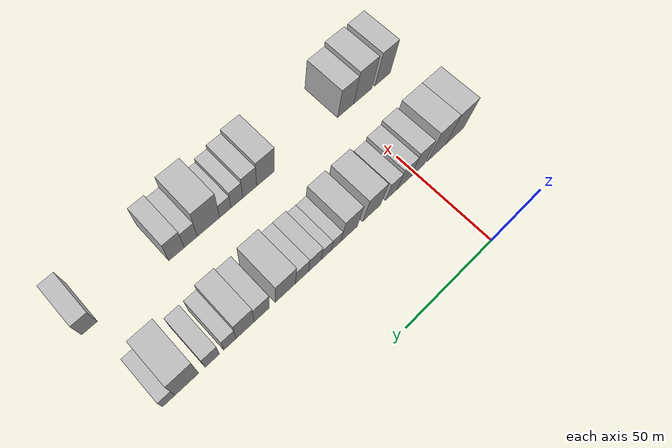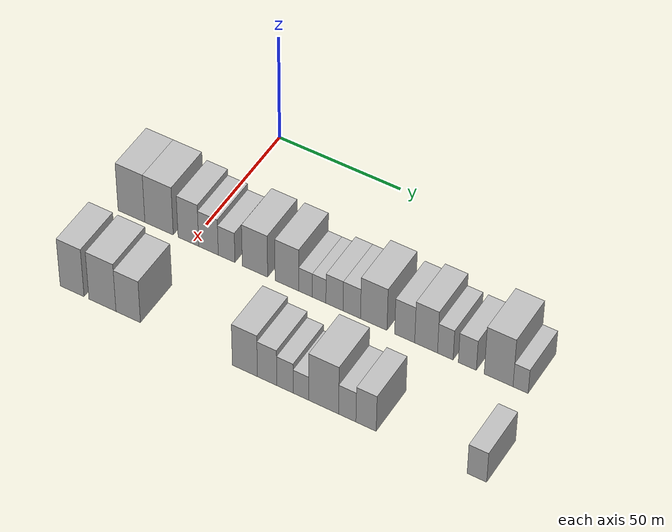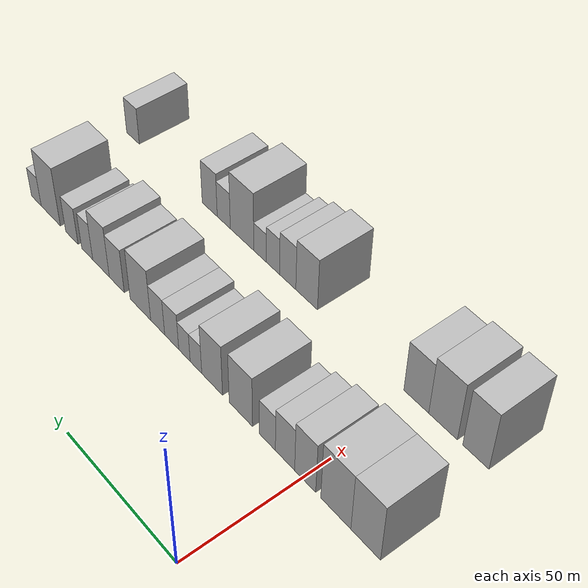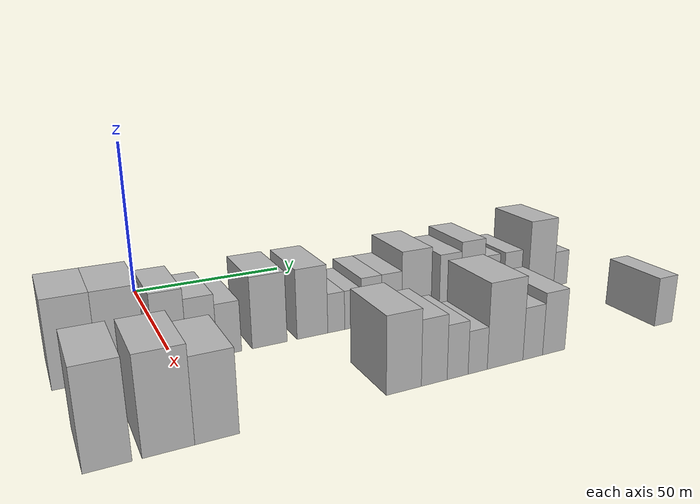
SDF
<sdf version="1.6">
 <world name="default">
  <model name="building_26">
   <static>1</static>
   <pose>50.0000 -24.9672 0 0.000000 0.000000 0.000000</pose>
   <link name="link">
    <pose>0 0 12.00 0 0 0</pose>
    <collision name="collision"><geometry><box><size>20.0000 11.2231 24.0000</size></box></geometry></collision>
    <visual name="visual">
     <cast_shadows>0</cast_shadows>
     <geometry><box><size>20.0000 11.2231 24.0000</size></box></geometry>
     <material>
      <script>
       <uri>model://HANNAS_wall/materials/scripts</uri>
       <uri>model://HANNAS_wall/materials/textures</uri>
       <name>vrc/HANNAS_wall</name>
      </script>
     </material>
    </visual>
   </link>
  </model>
  <model name="building_27">
   <static>1</static>
   <pose>50.0000 -13.4424 0 0.000000 0.000000 0.000000</pose>
   <link name="link">
    <pose>0 0 12.00 0 0 0</pose>
    <collision name="collision"><geometry><box><size>20.0000 11.8265 24.0000</size></box></geometry></collision>
    <visual name="visual">
     <cast_shadows>0</cast_shadows>
     <geometry><box><size>20.0000 11.8265 24.0000</size></box></geometry>
     <material>
      <script>
       <uri>model://HANNAS_wall/materials/scripts</uri>
       <uri>model://HANNAS_wall/materials/textures</uri>
       <name>vrc/HANNAS_wall</name>
      </script>
     </material>
    </visual>
   </link>
  </model>
  <model name="building_28">
   <static>1</static>
   <pose>50.0000 -1.2540 0 0.000000 0.000000 0.000000</pose>
   <link name="link">
    <pose>0 0 10.50 0 0 0</pose>
    <collision name="collision"><geometry><box><size>20.0000 8.5501 21.0000</size></box></geometry></collision>
    <visual name="visual">
     <cast_shadows>0</cast_shadows>
     <geometry><box><size>20.0000 8.5501 21.0000</size></box></geometry>
     <material>
      <script>
       <uri>model://HANNAS_wall/materials/scripts</uri>
       <uri>model://HANNAS_wall/materials/textures</uri>
       <name>vrc/HANNAS_wall</name>
      </script>
     </material>
    </visual>
   </link>
  </model>
  <model name="building_29">
   <static>1</static>
   <pose>50.0000 7.0445 0 0.000000 0.000000 0.000000</pose>
   <link name="link">
    <pose>0 0 9.00 0 0 0</pose>
    <collision name="collision"><geometry><box><size>20.0000 8.0470 18.0000</size></box></geometry></collision>
    <visual name="visual">
     <cast_shadows>0</cast_shadows>
     <geometry><box><size>20.0000 8.0470 18.0000</size></box></geometry>
     <material>
      <script>
       <uri>model://HANNAS_wall/materials/scripts</uri>
       <uri>model://HANNAS_wall/materials/textures</uri>
       <name>vrc/HANNAS_wall</name>
      </script>
     </material>
    </visual>
   </link>
  </model>
  <model name="building_30">
   <static>1</static>
   <pose>50.0000 14.4716 0 0.000000 0.000000 0.000000</pose>
   <link name="link">
    <pose>0 0 7.50 0 0 0</pose>
    <collision name="collision"><geometry><box><size>20.0000 6.8073 15.0000</size></box></geometry></collision>
    <visual name="visual">
     <cast_shadows>0</cast_shadows>
     <geometry><box><size>20.0000 6.8073 15.0000</size></box></geometry>
     <material>
      <script>
       <uri>model://HANNAS_wall/materials/scripts</uri>
       <uri>model://HANNAS_wall/materials/textures</uri>
       <name>vrc/HANNAS_wall</name>
      </script>
     </material>
    </visual>
   </link>
  </model>
  <model name="building_31">
   <static>1</static>
   <pose>50.0000 26.0191 0 0.000000 0.000000 0.000000</pose>
   <link name="link">
    <pose>0 0 10.50 0 0 0</pose>
    <collision name="collision"><geometry><box><size>20.0000 10.2875 21.0000</size></box></geometry></collision>
    <visual name="visual">
     <cast_shadows>0</cast_shadows>
     <geometry><box><size>20.0000 10.2875 21.0000</size></box></geometry>
     <material>
      <script>
       <uri>model://HANNAS_wall/materials/scripts</uri>
       <uri>model://HANNAS_wall/materials/textures</uri>
       <name>vrc/HANNAS_wall</name>
      </script>
     </material>
    </visual>
   </link>
  </model>
  <model name="building_32">
   <static>1</static>
   <pose>50.0000 38.9282 0 0.000000 0.000000 0.000000</pose>
   <link name="link">
    <pose>0 0 10.50 0 0 0</pose>
    <collision name="collision"><geometry><box><size>20.0000 9.5307 21.0000</size></box></geometry></collision>
    <visual name="visual">
     <cast_shadows>0</cast_shadows>
     <geometry><box><size>20.0000 9.5307 21.0000</size></box></geometry>
     <material>
      <script>
       <uri>model://HANNAS_wall/materials/scripts</uri>
       <uri>model://HANNAS_wall/materials/textures</uri>
       <name>vrc/HANNAS_wall</name>
      </script>
     </material>
    </visual>
   </link>
  </model>
  <model name="building_33">
   <static>1</static>
   <pose>50.0000 46.4095 0 0.000000 0.000000 0.000000</pose>
   <link name="link">
    <pose>0 0 6.00 0 0 0</pose>
    <collision name="collision"><geometry><box><size>20.0000 5.4320 12.0000</size></box></geometry></collision>
    <visual name="visual">
     <cast_shadows>0</cast_shadows>
     <geometry><box><size>20.0000 5.4320 12.0000</size></box></geometry>
     <material>
      <script>
       <uri>model://HANNAS_wall/materials/scripts</uri>
       <uri>model://HANNAS_wall/materials/textures</uri>
       <name>vrc/HANNAS_wall</name>
      </script>
     </material>
    </visual>
   </link>
  </model>
  <model name="building_34">
   <static>1</static>
   <pose>50.0000 51.8343 0 0.000000 0.000000 0.000000</pose>
   <link name="link">
    <pose>0 0 6.00 0 0 0</pose>
    <collision name="collision"><geometry><box><size>20.0000 5.4175 12.0000</size></box></geometry></collision>
    <visual name="visual">
     <cast_shadows>0</cast_shadows>
     <geometry><box><size>20.0000 5.4175 12.0000</size></box></geometry>
     <material>
      <script>
       <uri>model://HANNAS_wall/materials/scripts</uri>
       <uri>model://HANNAS_wall/materials/textures</uri>
       <name>vrc/HANNAS_wall</name>
      </script>
     </material>
    </visual>
   </link>
  </model>
  <model name="building_35">
   <static>1</static>
   <pose>50.0000 57.9451 0 0.000000 0.000000 0.000000</pose>
   <link name="link">
    <pose>0 0 7.50 0 0 0</pose>
    <collision name="collision"><geometry><box><size>20.0000 6.8042 15.0000</size></box></geometry></collision>
    <visual name="visual">
     <cast_shadows>0</cast_shadows>
     <geometry><box><size>20.0000 6.8042 15.0000</size></box></geometry>
     <material>
      <script>
       <uri>model://HANNAS_wall/materials/scripts</uri>
       <uri>model://HANNAS_wall/materials/textures</uri>
       <name>vrc/HANNAS_wall</name>
      </script>
     </material>
    </visual>
   </link>
  </model>
  <model name="building_36">
   <static>1</static>
   <pose>50.0000 64.7987 0 0.000000 0.000000 0.000000</pose>
   <link name="link">
    <pose>0 0 7.50 0 0 0</pose>
    <collision name="collision"><geometry><box><size>20.0000 6.9030 15.0000</size></box></geometry></collision>
    <visual name="visual">
     <cast_shadows>0</cast_shadows>
     <geometry><box><size>20.0000 6.9030 15.0000</size></box></geometry>
     <material>
      <script>
       <uri>model://HANNAS_wall/materials/scripts</uri>
       <uri>model://HANNAS_wall/materials/textures</uri>
       <name>vrc/HANNAS_wall</name>
      </script>
     </material>
    </visual>
   </link>
  </model>
  <model name="building_37">
   <static>1</static>
   <pose>50.0000 73.4553 0 0.000000 0.000000 0.000000</pose>
   <link name="link">
    <pose>0 0 10.50 0 0 0</pose>
    <collision name="collision"><geometry><box><size>20.0000 10.4101 21.0000</size></box></geometry></collision>
    <visual name="visual">
     <cast_shadows>0</cast_shadows>
     <geometry><box><size>20.0000 10.4101 21.0000</size></box></geometry>
     <material>
      <script>
       <uri>model://HANNAS_wall/materials/scripts</uri>
       <uri>model://HANNAS_wall/materials/textures</uri>
       <name>vrc/HANNAS_wall</name>
      </script>
     </material>
    </visual>
   </link>
  </model>
  <model name="building_38">
   <static>1</static>
   <pose>50.0000 85.5674 0 0.000000 0.000000 0.000000</pose>
   <link name="link">
    <pose>0 0 9.00 0 0 0</pose>
    <collision name="collision"><geometry><box><size>20.0000 7.8140 18.0000</size></box></geometry></collision>
    <visual name="visual">
     <cast_shadows>0</cast_shadows>
     <geometry><box><size>20.0000 7.8140 18.0000</size></box></geometry>
     <material>
      <script>
       <uri>model://HANNAS_wall/materials/scripts</uri>
       <uri>model://HANNAS_wall/materials/textures</uri>
       <name>vrc/HANNAS_wall</name>
      </script>
     </material>
    </visual>
   </link>
  </model>
  <model name="building_39">
   <static>1</static>
   <pose>50.0000 93.9009 0 0.000000 0.000000 0.000000</pose>
   <link name="link">
    <pose>0 0 10.50 0 0 0</pose>
    <collision name="collision"><geometry><box><size>20.0000 8.8532 21.0000</size></box></geometry></collision>
    <visual name="visual">
     <cast_shadows>0</cast_shadows>
     <geometry><box><size>20.0000 8.8532 21.0000</size></box></geometry>
     <material>
      <script>
       <uri>model://HANNAS_wall/materials/scripts</uri>
       <uri>model://HANNAS_wall/materials/textures</uri>
       <name>vrc/HANNAS_wall</name>
      </script>
     </material>
    </visual>
   </link>
  </model>
  <model name="building_40">
   <static>1</static>
   <pose>50.0000 101.3435 0 0.000000 0.000000 0.000000</pose>
   <link name="link">
    <pose>0 0 7.50 0 0 0</pose>
    <collision name="collision"><geometry><box><size>20.0000 6.0319 15.0000</size></box></geometry></collision>
    <visual name="visual">
     <cast_shadows>0</cast_shadows>
     <geometry><box><size>20.0000 6.0319 15.0000</size></box></geometry>
     <material>
      <script>
       <uri>model://HANNAS_wall/materials/scripts</uri>
       <uri>model://HANNAS_wall/materials/textures</uri>
       <name>vrc/HANNAS_wall</name>
      </script>
     </material>
    </visual>
   </link>
  </model>
  <model name="building_41">
   <static>1</static>
   <pose>50.0000 109.8195 0 0.000000 0.000000 0.000000</pose>
   <link name="link">
    <pose>0 0 7.50 0 0 0</pose>
    <collision name="collision"><geometry><box><size>20.0000 6.9199 15.0000</size></box></geometry></collision>
    <visual name="visual">
     <cast_shadows>0</cast_shadows>
     <geometry><box><size>20.0000 6.9199 15.0000</size></box></geometry>
     <material>
      <script>
       <uri>model://HANNAS_wall/materials/scripts</uri>
       <uri>model://HANNAS_wall/materials/textures</uri>
       <name>vrc/HANNAS_wall</name>
      </script>
     </material>
    </visual>
   </link>
  </model>
  <model name="building_42">
   <static>1</static>
   <pose>50.0000 121.7617 0 0.000000 0.000000 0.000000</pose>
   <link name="link">
    <pose>0 0 12.00 0 0 0</pose>
    <collision name="collision"><geometry><box><size>20.0000 10.9646 24.0000</size></box></geometry></collision>
    <visual name="visual">
     <cast_shadows>0</cast_shadows>
     <geometry><box><size>20.0000 10.9646 24.0000</size></box></geometry>
     <material>
      <script>
       <uri>model://HANNAS_wall/materials/scripts</uri>
       <uri>model://HANNAS_wall/materials/textures</uri>
       <name>vrc/HANNAS_wall</name>
      </script>
     </material>
    </visual>
   </link>
  </model>
  <model name="building_43">
   <static>1</static>
   <pose>50.0000 130.1045 0 0.000000 0.000000 0.000000</pose>
   <link name="link">
    <pose>0 0 6.00 0 0 0</pose>
    <collision name="collision"><geometry><box><size>20.0000 5.7210 12.0000</size></box></geometry></collision>
    <visual name="visual">
     <cast_shadows>0</cast_shadows>
     <geometry><box><size>20.0000 5.7210 12.0000</size></box></geometry>
     <material>
      <script>
       <uri>model://HANNAS_wall/materials/scripts</uri>
       <uri>model://HANNAS_wall/materials/textures</uri>
       <name>vrc/HANNAS_wall</name>
      </script>
     </material>
    </visual>
   </link>
  </model>
  <model name="building_92">
   <static>1</static>
   <pose>90.0000 -23.3345 0 0.000000 0.000000 0.000000</pose>
   <link name="link">
    <pose>0 0 12.00 0 0 0</pose>
    <collision name="collision"><geometry><box><size>20.0000 9.8511 24.0000</size></box></geometry></collision>
    <visual name="visual">
     <cast_shadows>0</cast_shadows>
     <geometry><box><size>20.0000 9.8511 24.0000</size></box></geometry>
     <material>
      <script>
       <uri>model://HANNAS_wall/materials/scripts</uri>
       <uri>model://HANNAS_wall/materials/textures</uri>
       <name>vrc/HANNAS_wall</name>
      </script>
     </material>
    </visual>
   </link>
  </model>
  <model name="building_93">
   <static>1</static>
   <pose>90.0000 -10.8529 0 0.000000 0.000000 0.000000</pose>
   <link name="link">
    <pose>0 0 12.00 0 0 0</pose>
    <collision name="collision"><geometry><box><size>20.0000 11.1121 24.0000</size></box></geometry></collision>
    <visual name="visual">
     <cast_shadows>0</cast_shadows>
     <geometry><box><size>20.0000 11.1121 24.0000</size></box></geometry>
     <material>
      <script>
       <uri>model://HANNAS_wall/materials/scripts</uri>
       <uri>model://HANNAS_wall/materials/textures</uri>
       <name>vrc/HANNAS_wall</name>
      </script>
     </material>
    </visual>
   </link>
  </model>
  <model name="building_94">
   <static>1</static>
   <pose>90.0000 -0.3164 0 0.000000 0.000000 0.000000</pose>
   <link name="link">
    <pose>0 0 10.50 0 0 0</pose>
    <collision name="collision"><geometry><box><size>20.0000 9.9607 21.0000</size></box></geometry></collision>
    <visual name="visual">
     <cast_shadows>0</cast_shadows>
     <geometry><box><size>20.0000 9.9607 21.0000</size></box></geometry>
     <material>
      <script>
       <uri>model://HANNAS_wall/materials/scripts</uri>
       <uri>model://HANNAS_wall/materials/textures</uri>
       <name>vrc/HANNAS_wall</name>
      </script>
     </material>
    </visual>
   </link>
  </model>
  <model name="building_95">
   <static>1</static>
   <pose>90.0000 46.4864 0 0.000000 0.000000 0.000000</pose>
   <link name="link">
    <pose>0 0 10.50 0 0 0</pose>
    <collision name="collision"><geometry><box><size>20.0000 9.8816 21.0000</size></box></geometry></collision>
    <visual name="visual">
     <cast_shadows>0</cast_shadows>
     <geometry><box><size>20.0000 9.8816 21.0000</size></box></geometry>
     <material>
      <script>
       <uri>model://HANNAS_wall/materials/scripts</uri>
       <uri>model://HANNAS_wall/materials/textures</uri>
       <name>vrc/HANNAS_wall</name>
      </script>
     </material>
    </visual>
   </link>
  </model>
  <model name="building_96">
   <static>1</static>
   <pose>90.0000 55.2190 0 0.000000 0.000000 0.000000</pose>
   <link name="link">
    <pose>0 0 9.00 0 0 0</pose>
    <collision name="collision"><geometry><box><size>20.0000 7.5835 18.0000</size></box></geometry></collision>
    <visual name="visual">
     <cast_shadows>0</cast_shadows>
     <geometry><box><size>20.0000 7.5835 18.0000</size></box></geometry>
     <material>
      <script>
       <uri>model://HANNAS_wall/materials/scripts</uri>
       <uri>model://HANNAS_wall/materials/textures</uri>
       <name>vrc/HANNAS_wall</name>
      </script>
     </material>
    </visual>
   </link>
  </model>
  <model name="building_97">
   <static>1</static>
   <pose>90.0000 62.1937 0 0.000000 0.000000 0.000000</pose>
   <link name="link">
    <pose>0 0 7.50 0 0 0</pose>
    <collision name="collision"><geometry><box><size>20.0000 6.3659 15.0000</size></box></geometry></collision>
    <visual name="visual">
     <cast_shadows>0</cast_shadows>
     <geometry><box><size>20.0000 6.3659 15.0000</size></box></geometry>
     <material>
      <script>
       <uri>model://HANNAS_wall/materials/scripts</uri>
       <uri>model://HANNAS_wall/materials/textures</uri>
       <name>vrc/HANNAS_wall</name>
      </script>
     </material>
    </visual>
   </link>
  </model>
  <model name="building_98">
   <static>1</static>
   <pose>90.0000 68.3756 0 0.000000 0.000000 0.000000</pose>
   <link name="link">
    <pose>0 0 6.00 0 0 0</pose>
    <collision name="collision"><geometry><box><size>20.0000 5.9979 12.0000</size></box></geometry></collision>
    <visual name="visual">
     <cast_shadows>0</cast_shadows>
     <geometry><box><size>20.0000 5.9979 12.0000</size></box></geometry>
     <material>
      <script>
       <uri>model://HANNAS_wall/materials/scripts</uri>
       <uri>model://HANNAS_wall/materials/textures</uri>
       <name>vrc/HANNAS_wall</name>
      </script>
     </material>
    </visual>
   </link>
  </model>
  <model name="building_99">
   <static>1</static>
   <pose>90.0000 77.1770 0 0.000000 0.000000 0.000000</pose>
   <link name="link">
    <pose>0 0 12.00 0 0 0</pose>
    <collision name="collision"><geometry><box><size>20.0000 11.6049 24.0000</size></box></geometry></collision>
    <visual name="visual">
     <cast_shadows>0</cast_shadows>
     <geometry><box><size>20.0000 11.6049 24.0000</size></box></geometry>
     <material>
      <script>
       <uri>model://HANNAS_wall/materials/scripts</uri>
       <uri>model://HANNAS_wall/materials/textures</uri>
       <name>vrc/HANNAS_wall</name>
      </script>
     </material>
    </visual>
   </link>
  </model>
  <model name="building_100">
   <static>1</static>
   <pose>90.0000 86.3092 0 0.000000 0.000000 0.000000</pose>
   <link name="link">
    <pose>0 0 7.50 0 0 0</pose>
    <collision name="collision"><geometry><box><size>20.0000 6.6594 15.0000</size></box></geometry></collision>
    <visual name="visual">
     <cast_shadows>0</cast_shadows>
     <geometry><box><size>20.0000 6.6594 15.0000</size></box></geometry>
     <material>
      <script>
       <uri>model://HANNAS_wall/materials/scripts</uri>
       <uri>model://HANNAS_wall/materials/textures</uri>
       <name>vrc/HANNAS_wall</name>
      </script>
     </material>
    </visual>
   </link>
  </model>
  <model name="building_101">
   <static>1</static>
   <pose>90.0000 93.5126 0 0.000000 0.000000 0.000000</pose>
   <link name="link">
    <pose>0 0 9.00 0 0 0</pose>
    <collision name="collision"><geometry><box><size>20.0000 7.7475 18.0000</size></box></geometry></collision>
    <visual name="visual">
     <cast_shadows>0</cast_shadows>
     <geometry><box><size>20.0000 7.7475 18.0000</size></box></geometry>
     <material>
      <script>
       <uri>model://HANNAS_wall/materials/scripts</uri>
       <uri>model://HANNAS_wall/materials/textures</uri>
       <name>vrc/HANNAS_wall</name>
      </script>
     </material>
    </visual>
   </link>
  </model>
  <model name="building_102">
   <static>1</static>
   <pose>90.0000 135.2506 0 0.000000 0.000000 0.000000</pose>
   <link name="link">
    <pose>0 0 7.50 0 0 0</pose>
    <collision name="collision"><geometry><box><size>20.0000 7.2428 15.0000</size></box></geometry></collision>
    <visual name="visual">
     <cast_shadows>0</cast_shadows>
     <geometry><box><size>20.0000 7.2428 15.0000</size></box></geometry>
     <material>
      <script>
       <uri>model://HANNAS_wall/materials/scripts</uri>
       <uri>model://HANNAS_wall/materials/textures</uri>
       <name>vrc/HANNAS_wall</name>
      </script>
     </material>
    </visual>
   </link>
  </model>
 </world>
</sdf>
